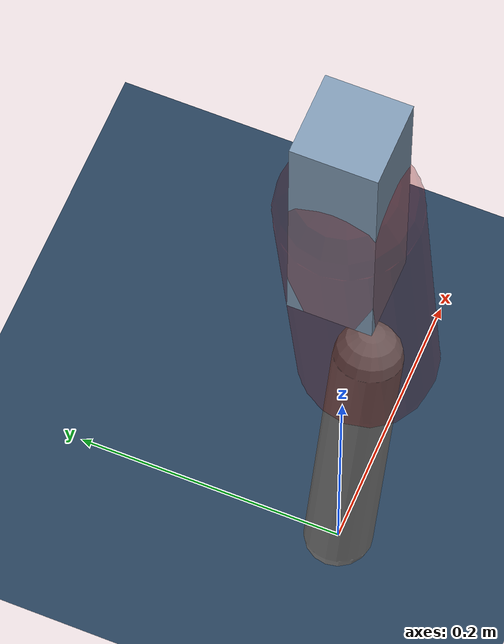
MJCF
<mujoco model="Hopper2D">
	<compiler inertiafromgeom="true" angle="radian" />
	<option timestep="0.001" integrator="implicit" cone="elliptic" solver="Newton" tolerance="1e-10" />

	<default>
		<geom contype="1" conaffinity="1" condim="3" friction="2 0.005 0.0001" solref="0.005 1" />
		<joint limited="true" damping="0.1" />
	</default>

	<asset>
		<texture name="skybox" type="skybox" builtin="gradient" rgb1=".4 .6 .8" rgb2="0 0 0" width="800" height="800" />
		<texture name="grid" type="2d" builtin="checker" rgb1=".1 .2 .3" rgb2=".2 .3 .4" width="300" height="300" mark="edge" markrgb=".2 .3 .4" />
		<material name="ground" texture="grid" texrepeat="1 1" texuniform="true" reflectance="0.1" />
		<material name="leg" rgba="0.5 0.6 0.7 1" />
	</asset>

	<worldbody>

		<geom name="floor" type="plane" size="5 5 0.25" material="ground" />

		<light directional="false" diffuse="0.8 0.8 0.8" specular="0.3 0.3 0.3" pos="0 0 2" dir="0 0 -1" />
		<light mode="targetbodycom" target="base" directional="false" diffuse="0.8 0.8 0.8" specular="0.3 0.3 0.3" pos="0 0 2" dir="0 0 -1" />

		<camera name="fixed" pos="0 -2 1" xyaxes="1 0 0 0 0 1" />
		<camera name="tracking" mode="trackcom" pos="0 -3 1" />

		<body name="root" pos="0 0 0.47255193106569016">
			<joint name="slide_x" type="slide" axis="1 0 0" range="-100 100" />
			<joint name="slide_z" type="slide" axis="0 0 1" range="0 10" />

			<body name="base" pos="0 0 0">
				<geom name="torso" type="box" size="0.03 0.03 0.1" mass="3.481" material="leg" />

				<body name="link1" pos="0 0 0" euler="0 1.4028676518309373 0">
					<joint type="hinge" axis="0 -1 0" pos="0 0 0" name="hinge1" limited="true" range="-3.14 3.14" stiffness="0" damping="0.1" />
					<geom name="thigh" type="capsule" fromto="0 0 0 0.28686366274298136 0 0" size="0.05" rgba="0.5 0 0 0.3" mass="0.9534318894060497" />

					<body name="link2" pos="0.28686366274298136 0 0" euler="0 0.4154637391161259 0">
						<joint type="hinge" axis="0 -1 0" pos="0 0 0" name="hinge2" limited="true" range="-3.14 3.14" stiffness="0" damping="0.1" />
						<geom name="shank" type="capsule" fromto="0 0 0 0.1956882683227088 0 0" size="0.025" mass="0.397250614658167" />

					</body>
				</body>
			</body>
		</body>
	</worldbody>

	<actuator>
		<motor name="torque1" joint="hinge1" ctrlrange="-143.03302249666035 143.03302249666035" ctrllimited="true" gear="1" />
		<motor name="torque2" joint="hinge2" ctrlrange="-159.41729682189708 159.41729682189708" ctrllimited="true" gear="1" />
	</actuator>
</mujoco>
